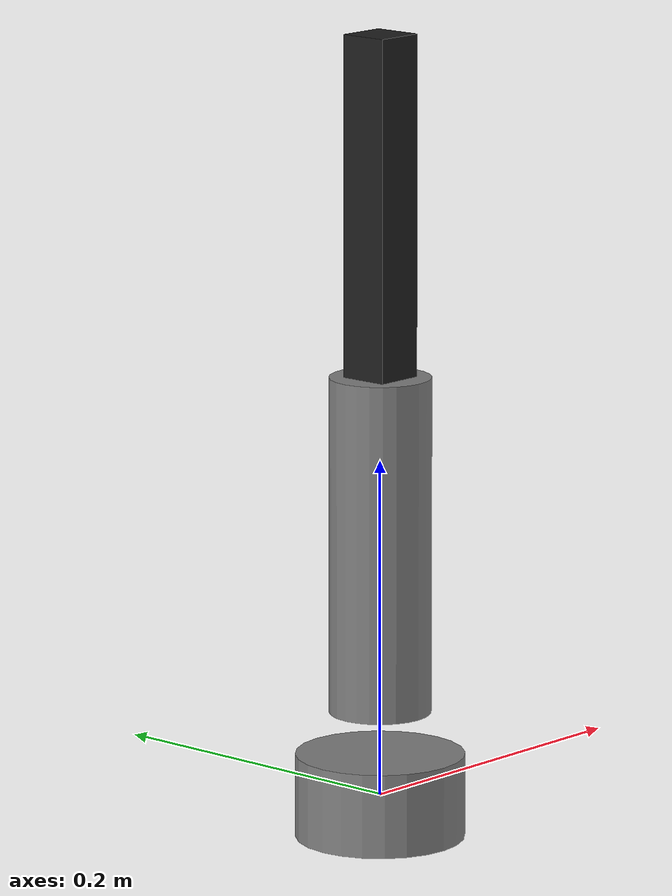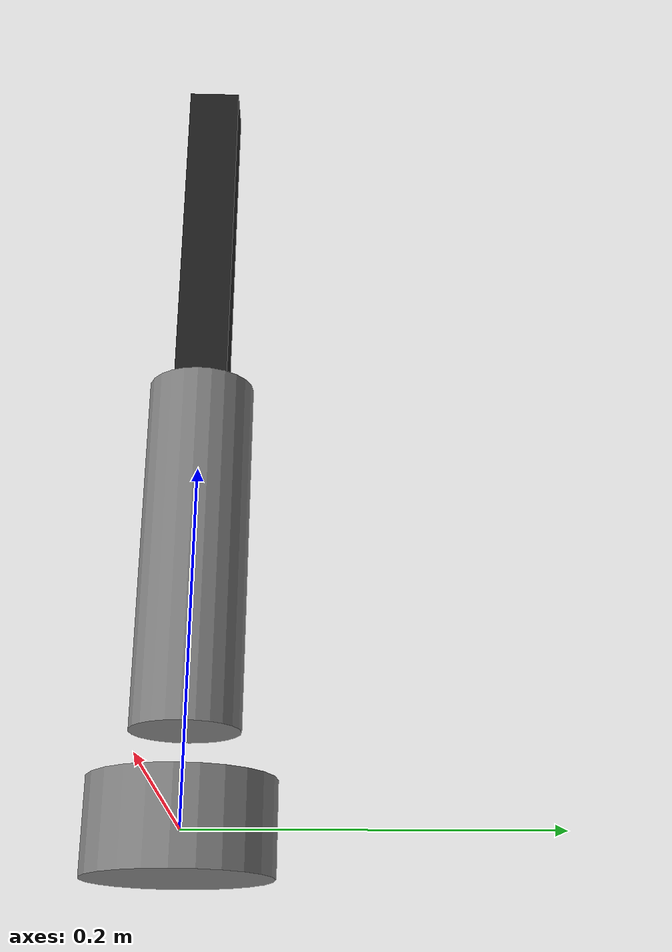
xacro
<?xml version="1.0"?>
<robot xmlns:xacro="http://ros.org/wiki/xacro">

    <!-- Materiales para visualización -->
    <material name="arm_grey">
        <color rgba="0.5 0.5 0.5 1.0"/>
    </material>

    <!-- Base del Brazo (Se conecta al joint arm_base_joint del tracer_v1) -->
    <link name="arm_base_link">
        <visual>
            <geometry>
                <cylinder radius="0.05" length="0.05"/>
            </geometry>
            <material name="arm_grey"/>
        </visual>
        <collision>
            <geometry>
                <cylinder radius="0.05" length="0.05"/>
            </geometry>
        </collision>
        <inertial>
            <mass value="1.0"/>
            <inertia ixx="0.001" ixy="0" ixz="0" iyy="0.001" iyz="0" izz="0.001"/>
        </inertial>
    </link>

    <!-- Articulación del Hombro (Giro sobre el eje Z) -->
    <joint name="shoulder_pan_joint" type="revolute">
        <parent link="arm_base_link"/>
        <child link="shoulder_link"/>
        <origin xyz="0 0 0.05" rpy="0 0 0"/>
        <axis xyz="0 0 1"/>
        <limit lower="-3.14" upper="3.14" effort="10.0" velocity="1.0"/>
    </joint>

    <link name="shoulder_link">
        <visual>
            <origin xyz="0 0 0.1" rpy="0 0 0"/>
            <geometry>
                <cylinder radius="0.03" length="0.2"/>
            </geometry>
            <material name="arm_grey"/>
        </visual>
        <collision>
            <origin xyz="0 0 0.1" rpy="0 0 0"/>
            <geometry>
                <cylinder radius="0.03" length="0.2"/>
            </geometry>
        </collision>
        <inertial>
            <origin xyz="0 0 0.1" rpy="0 0 0"/>
            <mass value="0.8"/>
            <inertia ixx="0.002" ixy="0" ixz="0" iyy="0.002" iyz="0" izz="0.001"/>
        </inertial>
    </link>

    <!-- Articulación del Codo (Giro sobre el eje Y) -->
    <joint name="elbow_joint" type="revolute">
        <parent link="shoulder_link"/>
        <child link="forearm_link"/>
        <origin xyz="0 0 0.2" rpy="0 0 0"/>
        <axis xyz="0 1 0"/>
        <limit lower="-1.57" upper="1.57" effort="10.0" velocity="1.0"/>
    </joint>

    <link name="forearm_link">
        <visual>
            <origin xyz="0 0 0.1" rpy="0 0 0"/>
            <geometry>
                <box size="0.03 0.03 0.2"/>
            </geometry>
            <material name="black"/>
        </visual>
        <collision>
            <origin xyz="0 0 0.1" rpy="0 0 0"/>
            <geometry>
                <box size="0.03 0.03 0.2"/>
            </geometry>
        </collision>
        <inertial>
            <origin xyz="0 0 0.1" rpy="0 0 0"/>
            <mass value="0.5"/>
            <inertia ixx="0.001" ixy="0" ixz="0" iyy="0.001" iyz="0" izz="0.001"/>
        </inertial>
    </link>

    <!-- Configuración para Gazebo -->
    <gazebo reference="arm_base_link">
        <material>Gazebo/Grey</material>
    </gazebo>
    <gazebo reference="forearm_link">
        <material>Gazebo/Black</material>
    </gazebo>

    <!-- Plugin para controlar el hombro bloqueado en 0 (eje Z fijo) -->
    <gazebo>
        <plugin
            filename="ignition-gazebo-joint-controller-system"
            name="ignition::gazebo::systems::JointController">
            <joint_name>shoulder_pan_joint</joint_name>
            <topic>/model/tracer/shoulder_pan_cmd</topic>
            <p_gain>500.0</p_gain>
            <i_gain>10.0</i_gain>
            <d_gain>20.0</d_gain>
        </plugin>
    </gazebo>

    <!-- Plugin para controlar el codo en Gazebo/Ignition (arriba/abajo) -->
    <gazebo>
        <plugin
            filename="ignition-gazebo-joint-controller-system"
            name="ignition::gazebo::systems::JointController">
            <joint_name>elbow_joint</joint_name>
            <topic>/model/tracer/elbow_joint_cmd</topic>
            <p_gain>500.0</p_gain>
            <i_gain>10.0</i_gain>
            <d_gain>20.0</d_gain>
        </plugin>
    </gazebo>

</robot>
